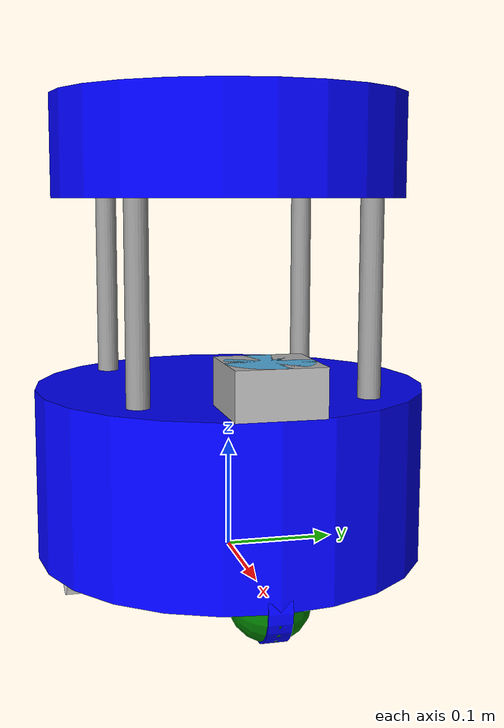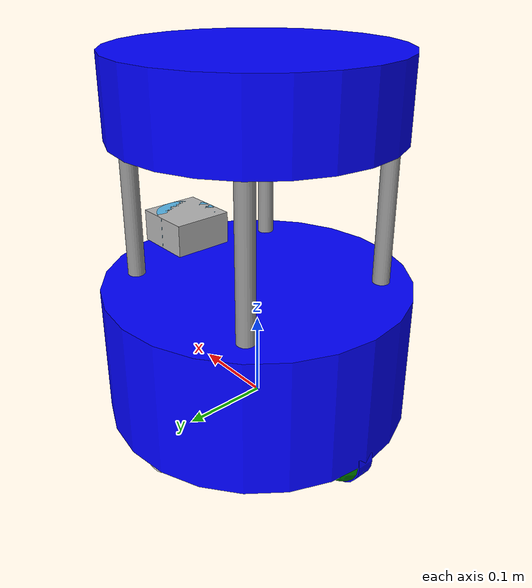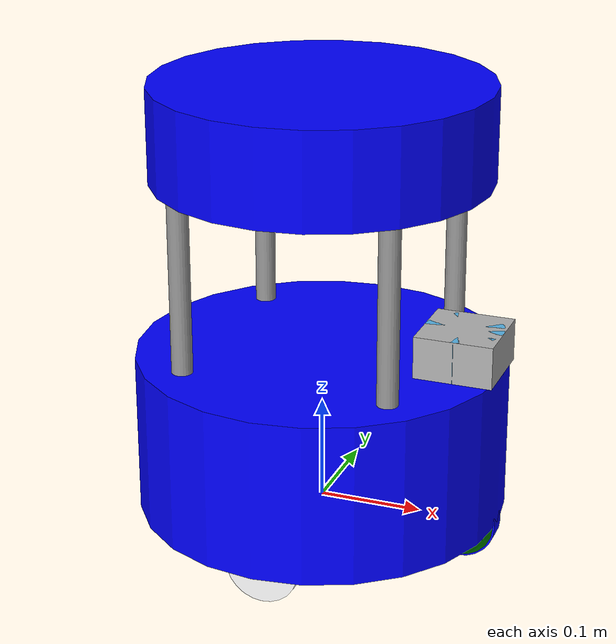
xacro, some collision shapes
<?xml version="1.0"?>
<robot xmlns:xacro="http://www.ros.org/wiki/xacro" name="my_box_bot">

<xacro:arg name="include_laser" default="true" />
<xacro:arg name="robot_name" default="barista" />
<xacro:arg name="robot_color" default="blue" />
<xacro:property name="robot_name" value="$(arg robot_name)"/>

<xacro:include filename="$(find barista_robot_description)/urdf/caster_wheel.xacro" />
<xacro:include filename="$(find barista_robot_description)/urdf/cup_holder_tray.xacro" />
<xacro:include filename="$(find barista_robot_description)/urdf/drive_wheel.xacro" />
<xacro:include filename="$(find barista_robot_description)/urdf/standoff_rod.xacro" />

<xacro:if value="$(arg include_laser)">
    <xacro:include filename="$(find barista_robot_description)/urdf/laser_scanner.xacro" />
</xacro:if>

<!-- MATERIALS                                                     -->
<material name="blue"> <color rgba="0.0 0.0 1.0 1"/> </material>
<material name="black"> <color rgba="0.0 0.0 0.0 1"/> </material>
<material name="white"> <color rgba="1.0 1.0 1.0 1"/> </material>
<material name="rod_grey"><color rgba="0.6 0.6 0.6 1.0"/> </material>
<material name="green_dark"> <color rgba="0.0 0.5 0.0 1"/> </material>
<material name="red"> <color rgba="1.0 0.0 0.0 1"/> </material>

<!-- BASE / CHASSIS                                                -->
<link name="base_link">
</link>

<link name="chassis">
    <visual>
        <origin xyz="0 0 0.0775" rpy="0 0 0"/>
        <geometry>
            <cylinder length="0.155" radius="0.178"/>
        </geometry>
        <material name="$(arg robot_color)"/>
    </visual>

    <collision>
        <origin xyz="0 0 0.0775" rpy="0 0 0"/>
        <geometry>
            <cylinder length="0.155" radius="0.178"/>
        </geometry>
    </collision>

    <inertial>
        <mass value="0.5"/>
        <origin rpy="0 0 0" xyz="0 0 0.0775"/>
        <inertia ixx="0.00496" ixy="0" ixz="0" iyy="0.00496" iyz="0" izz="0.00792"/>
    </inertial>
</link>

<joint name="base_link_2_chassis" type="fixed">
    <origin rpy="0 0 0" xyz="0 0 0" />
    <parent link="base_link" />
    <child link="chassis" />
</joint>

<!-- COMPONENT INSTANTIATION                                       -->
<xacro:drive_wheel prefix="left" parent="chassis" y_offset="0.145" color="white"/>
<xacro:drive_wheel prefix="right" parent="chassis" y_offset="-0.145" color="white"/>

<xacro:caster_wheel prefix="front" parent="chassis" x_offset="0.143"/>
<xacro:caster_wheel prefix="back"  parent="chassis" x_offset="-0.143"/>
<xacro:cup_holder_tray parent="base_link"/>

<xacro:if value="$(arg include_laser)">
    <xacro:laser_scanner parent="chassis" robot_name="${robot_name}"/>
</xacro:if>

<!-- PLUGINS                                                       -->

<!-- Joint State Publisher Plugin -->
<gazebo>
    <plugin filename="gz-sim-joint-state-publisher-system"
            name="gz::sim::systems::JointStatePublisher">
        <topic>/${robot_name}/joint_states</topic>
        <update_rate>30</update_rate>
        <joint_name>joint_left_wheel</joint_name>
        <joint_name>joint_right_wheel</joint_name>
        <joint_name>front_yaw_joint</joint_name>
        <joint_name>back_yaw_joint</joint_name>
        <joint_name>front_roll_joint</joint_name>
        <joint_name>back_roll_joint</joint_name>
        <joint_name>front_pitch_joint</joint_name>
        <joint_name>back_pitch_joint</joint_name>
        <xacro:if value="$(arg include_laser)">
            <joint_name>laser_scan_link_joint</joint_name>
            <joint_name>laser_scan_model_link_joint</joint_name>
        </xacro:if>
    </plugin>
</gazebo>

<!-- Differential Drive Plugin -->
<gazebo>
    <plugin filename="gz-sim-diff-drive-system"
            name="gz::sim::systems::DiffDrive">
        <left_joint>joint_left_wheel</left_joint>
        <right_joint>joint_right_wheel</right_joint>
        <wheel_separation>0.29</wheel_separation>
        <wheel_radius>0.035</wheel_radius>
        <topic>/${robot_name}/cmd_vel</topic>
        <publish_odom>true</publish_odom>
        <publish_odom_tf>true</publish_odom_tf>
        <publish_wheel_tf>true</publish_wheel_tf>
        <odom_topic>/${robot_name}/odom</odom_topic>
        <tf_topic>/${robot_name}/tf</tf_topic>
        <frame_id>${robot_name}/odom</frame_id>
        <child_frame_id>${robot_name}/base_link</child_frame_id>
    </plugin>
</gazebo>

<!-- Enable Sensors in Gazebo Sim -->

</robot>

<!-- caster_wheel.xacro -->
<robot xmlns:xacro="http://www.ros.org/wiki/xacro">

  <xacro:macro name="caster_wheel" params="prefix parent x_offset">

    <link name="${prefix}_yaw">
      <visual>
        <origin rpy="0 1.5707 1.5707" xyz="0 0 0"/>
        <geometry>
          <cylinder length="0.0206" radius="0.0352"/>
        </geometry>
        <material name="blue"/>
      </visual>

      <collision>
        <origin rpy="0 1.5707 1.5707" xyz="0 0 0"/>
        <geometry>
          <cylinder length="0.001" radius="0.0045000000000000005"/>
        </geometry>
      </collision>

      <inertial>
        <origin rpy="0 1.5707 1.5707" xyz="0 0 0"/>
        <mass value="0.001"/>
        <inertia ixx="5.145833333333334e-09" ixy="0" ixz="0" iyy="5.145833333333334e-09" iyz="0" izz="1.0125000000000003e-08"/>
      </inertial>
    </link>

    <joint name="${prefix}_yaw_joint" type="continuous">
      <origin rpy="0 0 0" xyz="${x_offset} 0 0"/>
      <axis xyz="0 0 1"/>
      <parent link="${parent}"/>
      <child link="${prefix}_yaw"/>
      <limit effort="1000.0" velocity="100.0"/>
      <dynamics damping="0.0" friction="0.0"/>
    </joint>

    <link name="${prefix}_roll">
      <visual>
        <origin rpy="0 1.5707 1.5707" xyz="0 0 0"/>
        <geometry>
          <cylinder length="0.0206" radius="0.0352"/>
        </geometry>
        <material name="red"/>
      </visual>

      <collision>
        <origin rpy="0 1.5707 1.5707" xyz="0 0 0"/>
        <geometry>
          <cylinder length="0.001" radius="0.0045000000000000005"/>
        </geometry>
      </collision>

      <inertial>
        <origin rpy="0 1.5707 1.5707" xyz="0 0 0"/>
        <mass value="0.001"/>
        <inertia ixx="5.145833333333334e-09" ixy="0" ixz="0" iyy="5.145833333333334e-09" iyz="0" izz="1.0125000000000003e-08"/>
      </inertial>
    </link>

    <joint name="${prefix}_roll_joint" type="continuous">
      <origin rpy="0 0 0" xyz="0 0 0"/>
      <axis xyz="1 0 0"/>
      <child link="${prefix}_roll"/>
      <parent link="${prefix}_yaw"/>
      <limit effort="1000.0" velocity="100.0"/>
      <dynamics damping="0.0" friction="0.0"/>
    </joint>

    <link name="${prefix}_pitch">
      <visual>
        <origin rpy="0 1.5707 1.5707" xyz="0 0 0"/>
        <geometry>
          <sphere radius="0.0352"/>
        </geometry>
        <material name="green_dark"/>
      </visual>

      <collision>
        <origin rpy="0 1.5707 1.5707" xyz="0 0 0"/>
        <geometry>
          <sphere radius="0.035"/>
        </geometry>
      </collision>

        <inertial>
            <origin rpy="0 1.5707 1.5707" xyz="0 0 0"/>
            <mass value="0.05"/>
            <inertia ixx="2.5e-05" ixy="0" ixz="0" iyy="2.5e-05" iyz="0" izz="2.5e-05"/>
        </inertial>
    </link>

    <joint name="${prefix}_pitch_joint" type="continuous">
      <origin rpy="0 0 0" xyz="0 0 0"/>
      <axis xyz="0 1 0"/>
      <child link="${prefix}_pitch"/>
      <parent link="${prefix}_roll"/>
      <limit effort="1000.0" velocity="100.0"/>
      <dynamics damping="0.0" friction="0.0"/>
    </joint>

    <gazebo reference="${prefix}_pitch">
      <collision>
        <surface>
          <friction>
            <ode>
              <mu>0.05</mu>
              <mu2>0.05</mu2>
            </ode>
          </friction>
        </surface>
      </collision>
    </gazebo>

  </xacro:macro>

</robot>

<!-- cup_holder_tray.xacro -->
<robot xmlns:xacro="http://www.ros.org/wiki/xacro">

  <xacro:include filename="$(find barista_robot_description)/urdf/standoff_rod.xacro" />

  <!-- Cup tray, mounted on top of the standoffs. -->
  <xacro:macro name="cup_tray" params="parent">

    <link name="cup_tray">
      <visual>
        <origin xyz="0 0 0" rpy="0 0 0"/>
        <geometry><cylinder length="0.090" radius="0.160"/></geometry>
        <material name="$(arg robot_color)"/>
      </visual>
    </link>

    <joint name="cup_tray_joint" type="fixed">
      <parent link="${parent}"/>
      <child link="cup_tray"/>
      <origin xyz="0 0 0.370" rpy="0 0 0"/> <!-- 0.155 (base) + 0.22 (standoff) -->
    </joint>

  </xacro:macro>

  <!-- Full assembly: four standoffs (front/back x left/right) plus the tray. -->
  <xacro:macro name="cup_holder_tray" params="parent">
    <xacro:standoff_rod link_suffix="left_front"  joint_suffix="left_joint_front"  parent="${parent}" x="0.1"  y="0.1"/>
    <xacro:standoff_rod link_suffix="left_back"   joint_suffix="left_joint_back"   parent="${parent}" x="-0.1" y="0.1"/>
    <xacro:standoff_rod link_suffix="right_front" joint_suffix="right_joint_front" parent="${parent}" x="0.1"  y="-0.1"/>
    <xacro:standoff_rod link_suffix="right_back"  joint_suffix="right_joint_back"  parent="${parent}" x="-0.1" y="-0.1"/>
    <xacro:cup_tray parent="${parent}"/>
  </xacro:macro>

</robot>

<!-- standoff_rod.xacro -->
<robot xmlns:xacro="http://www.ros.org/wiki/xacro">

  <!-- Single standoff rod, fixed to `parent` at (x, y, 0.120). Material
       "rod_grey" must already be defined in the including file. -->
  <xacro:macro name="standoff_rod" params="link_suffix joint_suffix parent x y">

    <link name="standoff_${link_suffix}">
      <visual>
        <origin xyz="0 0 0.11" rpy="0 0 0"/>
        <geometry><cylinder radius="0.01" length="0.22"/></geometry>
        <material name="rod_grey"/>
      </visual>
      <collision>
        <origin xyz="0 0 0.11" rpy="0 0 0"/>
        <geometry><cylinder radius="0.01" length="0.22"/></geometry>
      </collision>
      <inertial>
        <origin xyz="0 0 0.11" rpy="0 0 0"/>
        <mass value="0.1"/>
        <inertia ixx="0.0005" ixy="0.0" ixz="0.0" iyy="0.0005" iyz="0.0" izz="0.00002"/>
      </inertial>
    </link>

    <joint name="standoff_${joint_suffix}" type="fixed">
      <parent link="${parent}"/>
      <child link="standoff_${link_suffix}"/>
      <origin xyz="${x} ${y} 0.120" rpy="0 0 0"/>
    </joint>

  </xacro:macro>

</robot>

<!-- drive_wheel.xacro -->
<robot xmlns:xacro="http://www.ros.org/wiki/xacro">

  <xacro:macro name="drive_wheel" params="prefix parent y_offset color">

    <link name="${prefix}_wheel">
      <visual>
        <origin rpy="0 1.5707 1.5707" xyz="0 0 0"/>
        <geometry>
          <cylinder length="0.0206" radius="0.0352"/>
        </geometry>
        <material name="${color}"/>
      </visual>

      <collision>
        <origin rpy="0 1.5707 1.5707" xyz="0 0 0"/>
        <geometry>
          <cylinder length="0.03" radius="0.035"/>
        </geometry>
      </collision>

      <inertial>
        <origin rpy="0 1.5707 1.5707" xyz="0 0 0"/>
        <mass value="0.05"/>
        <inertia ixx="1.531666666666667e-05" ixy="0" ixz="0" iyy="1.531666666666667e-05" iyz="0" izz="3.0625000000000006e-05"/>
      </inertial>
    </link>

    <gazebo reference="${prefix}_wheel">
      <collision>
        <surface>
          <friction>
            <ode>
              <mu>10.0</mu>
              <mu2>10.0</mu2>
            </ode>
          </friction>
          <contact>
            <ode>
              <kp>10000000.0</kp>
              <kd>10000000.0</kd>
            </ode>
          </contact>
        </surface>
      </collision>
    </gazebo>

    <joint name="joint_${prefix}_wheel" type="continuous">
      <origin rpy="0 0 0" xyz="0 ${y_offset} 0"/>
      <axis xyz="0 1 0"/>
      <child link="${prefix}_wheel"/>
      <parent link="${parent}"/>
    </joint>

  </xacro:macro>

  <!-- Full drive assembly: left + right wheels. -->
  <xacro:macro name="drive_wheels" params="parent">
    <xacro:drive_wheel prefix="left"  parent="${parent}" y_offset="0.145"/>
    <xacro:drive_wheel prefix="right" parent="${parent}" y_offset="-0.145"/>
  </xacro:macro>

</robot>

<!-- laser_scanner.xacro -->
<robot xmlns:xacro="http://www.ros.org/wiki/xacro">

  <xacro:macro name="laser_scanner" params="parent robot_name:=barista use_ros2_control:=false">

    <link name="laser_scan_link">
      <visual>
        <origin rpy="0 0 0" xyz="0 0 0"/>
        <geometry>
          <mesh filename="package://barista_robot_description/meshes/sensors/rplidar.dae" scale="1.0 1.0 1.0"/>
        </geometry>
      </visual>

      <collision>
        <origin rpy="0 0 0" xyz="0 0 0.0204"/>
        <geometry>
          <box size="0.074986 0.074935 0.0408"/>
        </geometry>
      </collision>

      <inertial>
        <mass value="0.01"/>
        <origin rpy="0 0 0" xyz="0 0 0.0204"/>
        <inertia ixx="6.066578520833334e-06" ixy="0" ixz="0" iyy="6.072950163333333e-06" iyz="0" izz="9.365128684166666e-06"/>
      </inertial>
    </link>

    <joint name="laser_scan_link_joint" type="prismatic">
      <origin rpy="0 0 0" xyz="0.140 0 0.155"/>
      <parent link="${parent}"/>
      <child link="laser_scan_link"/>
      <axis xyz="0 0 1"/>
      <limit lower="-0.1" upper="0.0" effort="20.0" velocity="2.0"/>
      <dynamics damping="0.1" friction="1.0"/>
    </joint>

    <link name="laser_scan_frame">
    </link>

    <joint name="laser_scan_frame_joint" type="fixed">
      <origin rpy="0 0 0" xyz="0 0 0.03"/>
      <parent link="laser_scan_link"/>
      <child link="laser_scan_frame"/>
      <axis xyz="0 0 0"/>
    </joint>

    <link name="laser_scan_model_link">
      <visual>
        <origin rpy="0 0 0" xyz="0 0 0"/>
        <geometry>
          <mesh filename="package://barista_robot_description/meshes/sensors/rplidar.dae" scale="1.0 1.0 1.0"/>
        </geometry>
      </visual>

      <collision>
        <origin rpy="0 0 0" xyz="0 0 0.0204"/>
        <geometry>
          <cylinder length="0.0408" radius="0.037493"/>
        </geometry>
      </collision>

      <inertial>
        <mass value="0.01"/>
        <origin rpy="0 0 0" xyz="0 0 0.0204"/>
        <inertia ixx="6.066578520833334e-06" ixy="0" ixz="0" iyy="6.072950163333333e-06" iyz="0" izz="9.365128684166666e-06"/>
      </inertial>
    </link>

    <joint name="laser_scan_model_link_joint" type="continuous">
      <origin rpy="0 0 0" xyz="0.0 0.0 0.0"/>
      <parent link="laser_scan_link"/>
      <child link="laser_scan_model_link"/>
      <axis xyz="0 0 1"/>
      <limit effort="10.0" velocity="2.0"/>
      <dynamics friction="0.01"/>
    </joint>

    <!-- GPU lidar sensor, publishing on /scan -->
    <gazebo reference="laser_scan_frame">
      <sensor type="gpu_lidar" name="gpu_lidar">
        <pose relative_to='laser_scan_frame'>0 0 0 0 0 0</pose>
        <gz_frame_id>${robot_name}/laser_scan_frame</gz_frame_id>
        <always_on>1</always_on>
        <visualize>true</visualize>
        <update_rate>100</update_rate>
        <topic>/${robot_name}/scan</topic>
        <ray>
          <scan>
            <horizontal>
              <samples>200</samples>
              <resolution>1</resolution>
              <min_angle>-3.14</min_angle>
              <max_angle>3.14</max_angle>
            </horizontal>
          </scan>
          <range>
            <min>0.1</min>
            <max>5.0</max>
            <resolution>0.01</resolution>
          </range>
        </ray>
      </sensor>
    </gazebo>

  </xacro:macro>

</robot>
